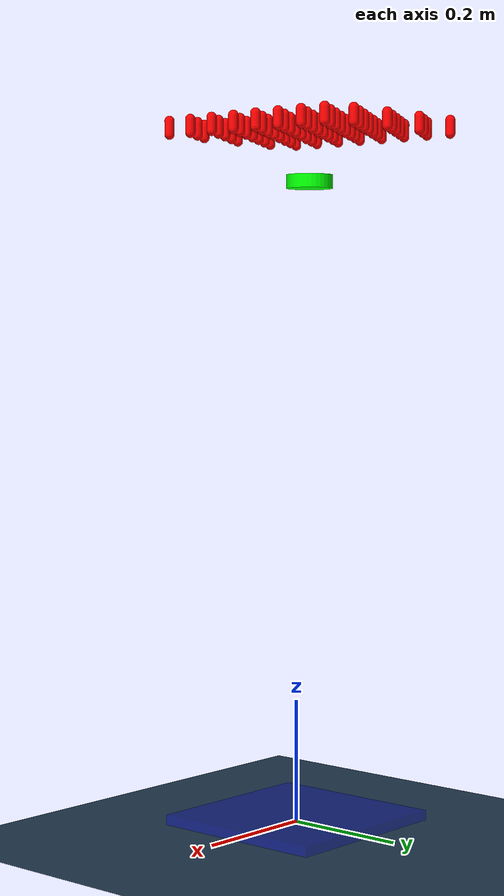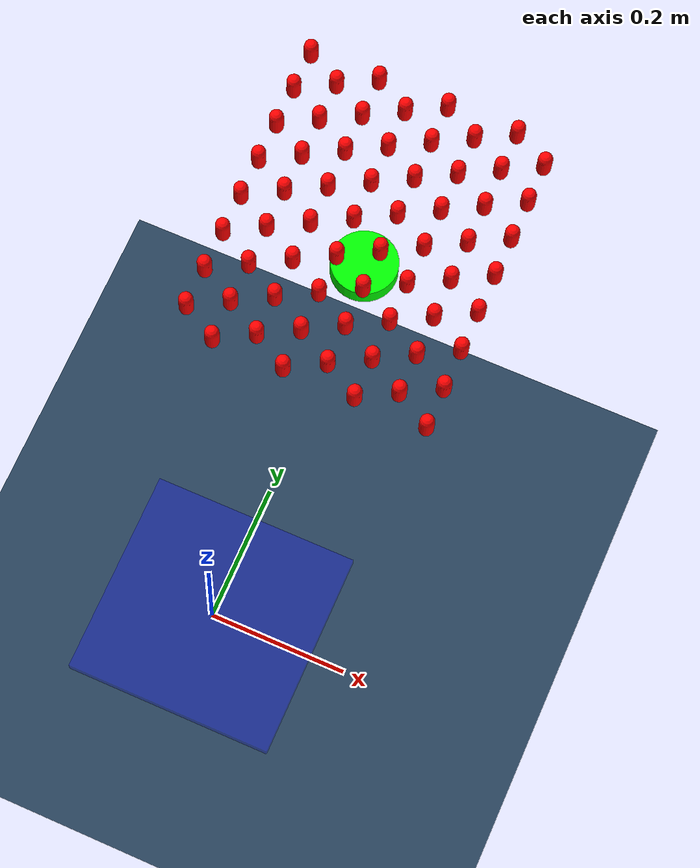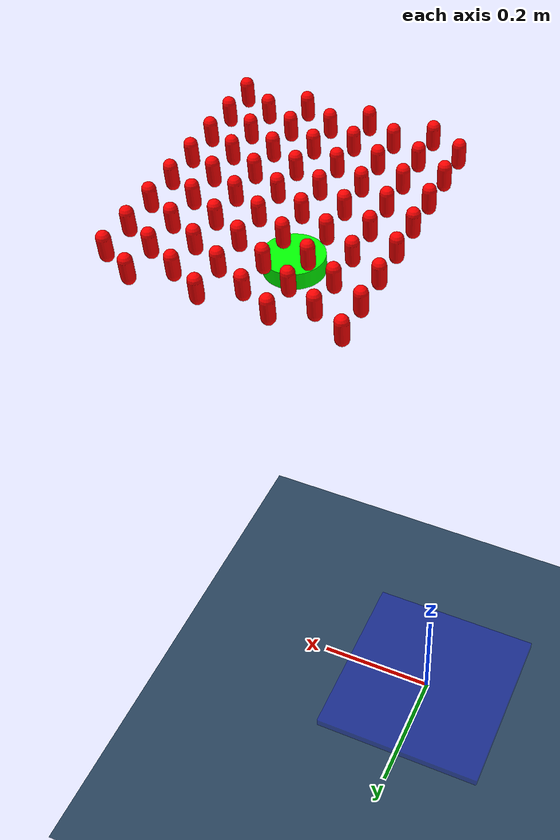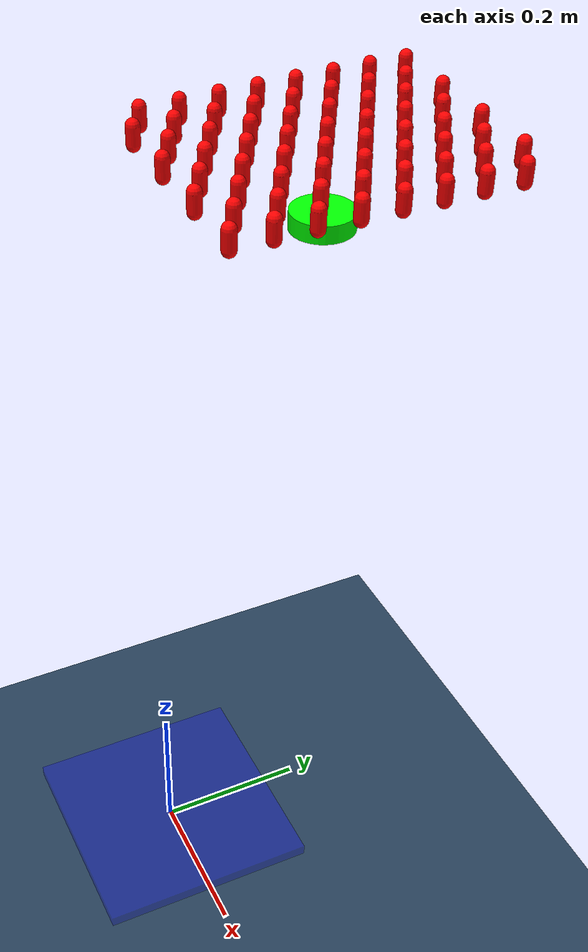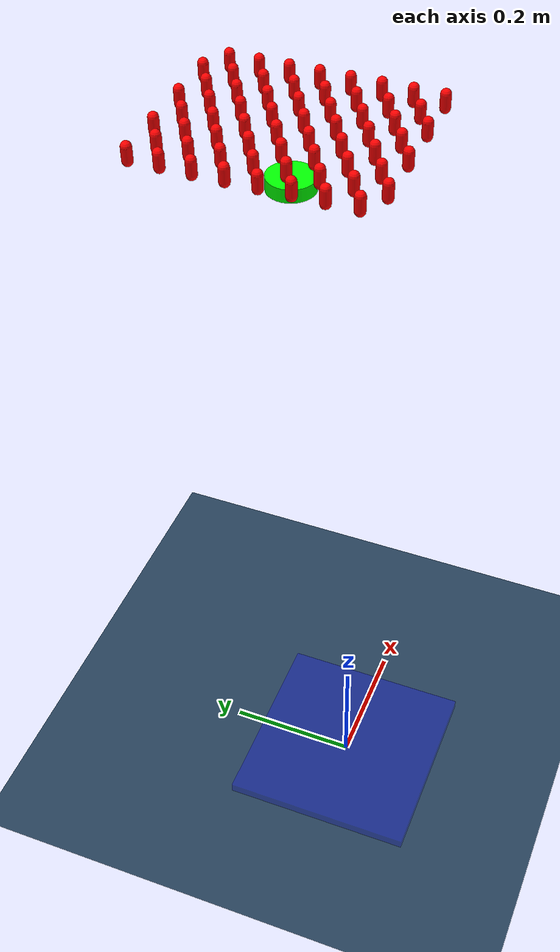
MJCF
<mujoco model="scene">
    <include file="delta_array.xml"/>

    <compiler autolimits="true" angle="degree"/>
    <option integrator="implicitfast" timestep="0.0005">
      <flag multiccd="enable" />
    </option>
    <visual>
      <headlight diffuse="0.6 0.6 0.6" ambient="0.3 0.3 0.3" specular="0 0 0"/>
      <rgba haze="0.15 0.25 0.35 1"/>
      <global fovy="58" azimuth="0" elevation="90"/>
    </visual>
    <statistic center="0.13125 0.1407285 1.5" extent="0.85"/>

    <asset>
      <texture type="skybox" builtin="gradient" rgb1="0.3 0.5 0.7" rgb2="0 0 0" width="512" height="3072"/>
      <texture type="2d" name="groundplane" builtin="checker" mark="edge" rgb1="0.2 0.3 0.4" rgb2="0.1 0.2 0.3"
        markrgb="0.8 0.8 0.8" width="300" height="300"/>
      <material name="groundplane" texture="groundplane" texuniform="true" texrepeat="5 5" reflectance="0.2"/>
      <material name="collision_material" rgba="0 0 0 0"/> <!-- transparent for collision -->
      <material name="visual_material" rgba="0 0 1 0.3"/> <!-- Blue semi-transparent for visual -->
    </asset>

    <worldbody>
      <light pos="0 0 1.5" dir="0 0 -1" directional="true"/>
      <geom name="floor" size="0 0 0.05" type="plane" material="groundplane"/>
    </worldbody>
  </mujoco>

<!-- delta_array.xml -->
<mujoco model="delta_array">
  <asset>
    <texture name="disc" file="assets/texture.png" type="2d" />
    <material name="disc" texture="disc" specular="0.5" shininess="0.5" />
    <mesh file="assets/disc.obj" scale="1 1 1" />
  </asset>
  <default>
    <geom type="capsule" size="0.0075 0.01" mass="0.4" condim="6" />
  </default>
  <visual>
    <global offwidth="1920" offheight="1080" />
  </visual>
  <worldbody>
    <body name="fingertip_0" pos="0.000000 0.000000 1.100000">
      <geom rgba="1 0 0 1" />
      <joint name="fingertip_0_x" type="slide" axis="1 0 0" limited="true" range="-0.03 0.03" />
      <joint name="fingertip_0_y" type="slide" axis="0 1 0" limited="true" range="-0.03 0.03" />
    </body>
    <body name="fingertip_1" pos="0.000000 0.043301 1.100000">
      <geom rgba="1 0 0 1" />
      <joint name="fingertip_1_x" type="slide" axis="1 0 0" limited="true" range="-0.03 0.03" />
      <joint name="fingertip_1_y" type="slide" axis="0 1 0" limited="true" range="-0.03 0.03" />
    </body>
    <body name="fingertip_2" pos="0.000000 0.086602 1.100000">
      <geom rgba="1 0 0 1" />
      <joint name="fingertip_2_x" type="slide" axis="1 0 0" limited="true" range="-0.03 0.03" />
      <joint name="fingertip_2_y" type="slide" axis="0 1 0" limited="true" range="-0.03 0.03" />
    </body>
    <body name="fingertip_3" pos="0.000000 0.129903 1.100000">
      <geom rgba="1 0 0 1" />
      <joint name="fingertip_3_x" type="slide" axis="1 0 0" limited="true" range="-0.03 0.03" />
      <joint name="fingertip_3_y" type="slide" axis="0 1 0" limited="true" range="-0.03 0.03" />
    </body>
    <body name="fingertip_4" pos="0.000000 0.173204 1.100000">
      <geom rgba="1 0 0 1" />
      <joint name="fingertip_4_x" type="slide" axis="1 0 0" limited="true" range="-0.03 0.03" />
      <joint name="fingertip_4_y" type="slide" axis="0 1 0" limited="true" range="-0.03 0.03" />
    </body>
    <body name="fingertip_5" pos="0.000000 0.216505 1.100000">
      <geom rgba="1 0 0 1" />
      <joint name="fingertip_5_x" type="slide" axis="1 0 0" limited="true" range="-0.03 0.03" />
      <joint name="fingertip_5_y" type="slide" axis="0 1 0" limited="true" range="-0.03 0.03" />
    </body>
    <body name="fingertip_6" pos="0.000000 0.259806 1.100000">
      <geom rgba="1 0 0 1" />
      <joint name="fingertip_6_x" type="slide" axis="1 0 0" limited="true" range="-0.03 0.03" />
      <joint name="fingertip_6_y" type="slide" axis="0 1 0" limited="true" range="-0.03 0.03" />
    </body>
    <body name="fingertip_7" pos="0.000000 0.303107 1.100000">
      <geom rgba="1 0 0 1" />
      <joint name="fingertip_7_x" type="slide" axis="1 0 0" limited="true" range="-0.03 0.03" />
      <joint name="fingertip_7_y" type="slide" axis="0 1 0" limited="true" range="-0.03 0.03" />
    </body>
    <body name="fingertip_8" pos="0.037500 -0.021650 1.100000">
      <geom rgba="1 0 0 1" />
      <joint name="fingertip_8_x" type="slide" axis="1 0 0" limited="true" range="-0.03 0.03" />
      <joint name="fingertip_8_y" type="slide" axis="0 1 0" limited="true" range="-0.03 0.03" />
    </body>
    <body name="fingertip_9" pos="0.037500 0.021651 1.100000">
      <geom rgba="1 0 0 1" />
      <joint name="fingertip_9_x" type="slide" axis="1 0 0" limited="true" range="-0.03 0.03" />
      <joint name="fingertip_9_y" type="slide" axis="0 1 0" limited="true" range="-0.03 0.03" />
    </body>
    <body name="fingertip_10" pos="0.037500 0.064952 1.100000">
      <geom rgba="1 0 0 1" />
      <joint name="fingertip_10_x" type="slide" axis="1 0 0" limited="true" range="-0.03 0.03" />
      <joint name="fingertip_10_y" type="slide" axis="0 1 0" limited="true" range="-0.03 0.03" />
    </body>
    <body name="fingertip_11" pos="0.037500 0.108253 1.100000">
      <geom rgba="1 0 0 1" />
      <joint name="fingertip_11_x" type="slide" axis="1 0 0" limited="true" range="-0.03 0.03" />
      <joint name="fingertip_11_y" type="slide" axis="0 1 0" limited="true" range="-0.03 0.03" />
    </body>
    <body name="fingertip_12" pos="0.037500 0.151554 1.100000">
      <geom rgba="1 0 0 1" />
      <joint name="fingertip_12_x" type="slide" axis="1 0 0" limited="true" range="-0.03 0.03" />
      <joint name="fingertip_12_y" type="slide" axis="0 1 0" limited="true" range="-0.03 0.03" />
    </body>
    <body name="fingertip_13" pos="0.037500 0.194855 1.100000">
      <geom rgba="1 0 0 1" />
      <joint name="fingertip_13_x" type="slide" axis="1 0 0" limited="true" range="-0.03 0.03" />
      <joint name="fingertip_13_y" type="slide" axis="0 1 0" limited="true" range="-0.03 0.03" />
    </body>
    <body name="fingertip_14" pos="0.037500 0.238156 1.100000">
      <geom rgba="1 0 0 1" />
      <joint name="fingertip_14_x" type="slide" axis="1 0 0" limited="true" range="-0.03 0.03" />
      <joint name="fingertip_14_y" type="slide" axis="0 1 0" limited="true" range="-0.03 0.03" />
    </body>
    <body name="fingertip_15" pos="0.037500 0.281457 1.100000">
      <geom rgba="1 0 0 1" />
      <joint name="fingertip_15_x" type="slide" axis="1 0 0" limited="true" range="-0.03 0.03" />
      <joint name="fingertip_15_y" type="slide" axis="0 1 0" limited="true" range="-0.03 0.03" />
    </body>
    <body name="fingertip_16" pos="0.075000 0.000000 1.100000">
      <geom rgba="1 0 0 1" />
      <joint name="fingertip_16_x" type="slide" axis="1 0 0" limited="true" range="-0.03 0.03" />
      <joint name="fingertip_16_y" type="slide" axis="0 1 0" limited="true" range="-0.03 0.03" />
    </body>
    <body name="fingertip_17" pos="0.075000 0.043301 1.100000">
      <geom rgba="1 0 0 1" />
      <joint name="fingertip_17_x" type="slide" axis="1 0 0" limited="true" range="-0.03 0.03" />
      <joint name="fingertip_17_y" type="slide" axis="0 1 0" limited="true" range="-0.03 0.03" />
    </body>
    <body name="fingertip_18" pos="0.075000 0.086602 1.100000">
      <geom rgba="1 0 0 1" />
      <joint name="fingertip_18_x" type="slide" axis="1 0 0" limited="true" range="-0.03 0.03" />
      <joint name="fingertip_18_y" type="slide" axis="0 1 0" limited="true" range="-0.03 0.03" />
    </body>
    <body name="fingertip_19" pos="0.075000 0.129903 1.100000">
      <geom rgba="1 0 0 1" />
      <joint name="fingertip_19_x" type="slide" axis="1 0 0" limited="true" range="-0.03 0.03" />
      <joint name="fingertip_19_y" type="slide" axis="0 1 0" limited="true" range="-0.03 0.03" />
    </body>
    <body name="fingertip_20" pos="0.075000 0.173204 1.100000">
      <geom rgba="1 0 0 1" />
      <joint name="fingertip_20_x" type="slide" axis="1 0 0" limited="true" range="-0.03 0.03" />
      <joint name="fingertip_20_y" type="slide" axis="0 1 0" limited="true" range="-0.03 0.03" />
    </body>
    <body name="fingertip_21" pos="0.075000 0.216505 1.100000">
      <geom rgba="1 0 0 1" />
      <joint name="fingertip_21_x" type="slide" axis="1 0 0" limited="true" range="-0.03 0.03" />
      <joint name="fingertip_21_y" type="slide" axis="0 1 0" limited="true" range="-0.03 0.03" />
    </body>
    <body name="fingertip_22" pos="0.075000 0.259806 1.100000">
      <geom rgba="1 0 0 1" />
      <joint name="fingertip_22_x" type="slide" axis="1 0 0" limited="true" range="-0.03 0.03" />
      <joint name="fingertip_22_y" type="slide" axis="0 1 0" limited="true" range="-0.03 0.03" />
    </body>
    <body name="fingertip_23" pos="0.075000 0.303107 1.100000">
      <geom rgba="1 0 0 1" />
      <joint name="fingertip_23_x" type="slide" axis="1 0 0" limited="true" range="-0.03 0.03" />
      <joint name="fingertip_23_y" type="slide" axis="0 1 0" limited="true" range="-0.03 0.03" />
    </body>
    <body name="fingertip_24" pos="0.112500 -0.021650 1.100000">
      <geom rgba="1 0 0 1" />
      <joint name="fingertip_24_x" type="slide" axis="1 0 0" limited="true" range="-0.03 0.03" />
      <joint name="fingertip_24_y" type="slide" axis="0 1 0" limited="true" range="-0.03 0.03" />
    </body>
    <body name="fingertip_25" pos="0.112500 0.021651 1.100000">
      <geom rgba="1 0 0 1" />
      <joint name="fingertip_25_x" type="slide" axis="1 0 0" limited="true" range="-0.03 0.03" />
      <joint name="fingertip_25_y" type="slide" axis="0 1 0" limited="true" range="-0.03 0.03" />
    </body>
    <body name="fingertip_26" pos="0.112500 0.064952 1.100000">
      <geom rgba="1 0 0 1" />
      <joint name="fingertip_26_x" type="slide" axis="1 0 0" limited="true" range="-0.03 0.03" />
      <joint name="fingertip_26_y" type="slide" axis="0 1 0" limited="true" range="-0.03 0.03" />
    </body>
    <body name="fingertip_27" pos="0.112500 0.108253 1.100000">
      <geom rgba="1 0 0 1" />
      <joint name="fingertip_27_x" type="slide" axis="1 0 0" limited="true" range="-0.03 0.03" />
      <joint name="fingertip_27_y" type="slide" axis="0 1 0" limited="true" range="-0.03 0.03" />
    </body>
    <body name="fingertip_28" pos="0.112500 0.151554 1.100000">
      <geom rgba="1 0 0 1" />
      <joint name="fingertip_28_x" type="slide" axis="1 0 0" limited="true" range="-0.03 0.03" />
      <joint name="fingertip_28_y" type="slide" axis="0 1 0" limited="true" range="-0.03 0.03" />
    </body>
    <body name="fingertip_29" pos="0.112500 0.194855 1.100000">
      <geom rgba="1 0 0 1" />
      <joint name="fingertip_29_x" type="slide" axis="1 0 0" limited="true" range="-0.03 0.03" />
      <joint name="fingertip_29_y" type="slide" axis="0 1 0" limited="true" range="-0.03 0.03" />
    </body>
    <body name="fingertip_30" pos="0.112500 0.238156 1.100000">
      <geom rgba="1 0 0 1" />
      <joint name="fingertip_30_x" type="slide" axis="1 0 0" limited="true" range="-0.03 0.03" />
      <joint name="fingertip_30_y" type="slide" axis="0 1 0" limited="true" range="-0.03 0.03" />
    </body>
    <body name="fingertip_31" pos="0.112500 0.281457 1.100000">
      <geom rgba="1 0 0 1" />
      <joint name="fingertip_31_x" type="slide" axis="1 0 0" limited="true" range="-0.03 0.03" />
      <joint name="fingertip_31_y" type="slide" axis="0 1 0" limited="true" range="-0.03 0.03" />
    </body>
    <body name="fingertip_32" pos="0.150000 0.000000 1.100000">
      <geom rgba="1 0 0 1" />
      <joint name="fingertip_32_x" type="slide" axis="1 0 0" limited="true" range="-0.03 0.03" />
      <joint name="fingertip_32_y" type="slide" axis="0 1 0" limited="true" range="-0.03 0.03" />
    </body>
    <body name="fingertip_33" pos="0.150000 0.043301 1.100000">
      <geom rgba="1 0 0 1" />
      <joint name="fingertip_33_x" type="slide" axis="1 0 0" limited="true" range="-0.03 0.03" />
      <joint name="fingertip_33_y" type="slide" axis="0 1 0" limited="true" range="-0.03 0.03" />
    </body>
    <body name="fingertip_34" pos="0.150000 0.086602 1.100000">
      <geom rgba="1 0 0 1" />
      <joint name="fingertip_34_x" type="slide" axis="1 0 0" limited="true" range="-0.03 0.03" />
      <joint name="fingertip_34_y" type="slide" axis="0 1 0" limited="true" range="-0.03 0.03" />
    </body>
    <body name="fingertip_35" pos="0.150000 0.129903 1.100000">
      <geom rgba="1 0 0 1" />
      <joint name="fingertip_35_x" type="slide" axis="1 0 0" limited="true" range="-0.03 0.03" />
      <joint name="fingertip_35_y" type="slide" axis="0 1 0" limited="true" range="-0.03 0.03" />
    </body>
    <body name="fingertip_36" pos="0.150000 0.173204 1.100000">
      <geom rgba="1 0 0 1" />
      <joint name="fingertip_36_x" type="slide" axis="1 0 0" limited="true" range="-0.03 0.03" />
      <joint name="fingertip_36_y" type="slide" axis="0 1 0" limited="true" range="-0.03 0.03" />
    </body>
    <body name="fingertip_37" pos="0.150000 0.216505 1.100000">
      <geom rgba="1 0 0 1" />
      <joint name="fingertip_37_x" type="slide" axis="1 0 0" limited="true" range="-0.03 0.03" />
      <joint name="fingertip_37_y" type="slide" axis="0 1 0" limited="true" range="-0.03 0.03" />
    </body>
    <body name="fingertip_38" pos="0.150000 0.259806 1.100000">
      <geom rgba="1 0 0 1" />
      <joint name="fingertip_38_x" type="slide" axis="1 0 0" limited="true" range="-0.03 0.03" />
      <joint name="fingertip_38_y" type="slide" axis="0 1 0" limited="true" range="-0.03 0.03" />
    </body>
    <body name="fingertip_39" pos="0.150000 0.303107 1.100000">
      <geom rgba="1 0 0 1" />
      <joint name="fingertip_39_x" type="slide" axis="1 0 0" limited="true" range="-0.03 0.03" />
      <joint name="fingertip_39_y" type="slide" axis="0 1 0" limited="true" range="-0.03 0.03" />
    </body>
    <body name="fingertip_40" pos="0.187500 -0.021650 1.100000">
      <geom rgba="1 0 0 1" />
      <joint name="fingertip_40_x" type="slide" axis="1 0 0" limited="true" range="-0.03 0.03" />
      <joint name="fingertip_40_y" type="slide" axis="0 1 0" limited="true" range="-0.03 0.03" />
    </body>
    <body name="fingertip_41" pos="0.187500 0.021651 1.100000">
      <geom rgba="1 0 0 1" />
      <joint name="fingertip_41_x" type="slide" axis="1 0 0" limited="true" range="-0.03 0.03" />
      <joint name="fingertip_41_y" type="slide" axis="0 1 0" limited="true" range="-0.03 0.03" />
    </body>
    <body name="fingertip_42" pos="0.187500 0.064952 1.100000">
      <geom rgba="1 0 0 1" />
      <joint name="fingertip_42_x" type="slide" axis="1 0 0" limited="true" range="-0.03 0.03" />
      <joint name="fingertip_42_y" type="slide" axis="0 1 0" limited="true" range="-0.03 0.03" />
    </body>
    <body name="fingertip_43" pos="0.187500 0.108253 1.100000">
      <geom rgba="1 0 0 1" />
      <joint name="fingertip_43_x" type="slide" axis="1 0 0" limited="true" range="-0.03 0.03" />
      <joint name="fingertip_43_y" type="slide" axis="0 1 0" limited="true" range="-0.03 0.03" />
    </body>
    <body name="fingertip_44" pos="0.187500 0.151554 1.100000">
      <geom rgba="1 0 0 1" />
      <joint name="fingertip_44_x" type="slide" axis="1 0 0" limited="true" range="-0.03 0.03" />
      <joint name="fingertip_44_y" type="slide" axis="0 1 0" limited="true" range="-0.03 0.03" />
    </body>
    <body name="fingertip_45" pos="0.187500 0.194855 1.100000">
      <geom rgba="1 0 0 1" />
      <joint name="fingertip_45_x" type="slide" axis="1 0 0" limited="true" range="-0.03 0.03" />
      <joint name="fingertip_45_y" type="slide" axis="0 1 0" limited="true" range="-0.03 0.03" />
    </body>
    <body name="fingertip_46" pos="0.187500 0.238156 1.100000">
      <geom rgba="1 0 0 1" />
      <joint name="fingertip_46_x" type="slide" axis="1 0 0" limited="true" range="-0.03 0.03" />
      <joint name="fingertip_46_y" type="slide" axis="0 1 0" limited="true" range="-0.03 0.03" />
    </body>
    <body name="fingertip_47" pos="0.187500 0.281457 1.100000">
      <geom rgba="1 0 0 1" />
      <joint name="fingertip_47_x" type="slide" axis="1 0 0" limited="true" range="-0.03 0.03" />
      <joint name="fingertip_47_y" type="slide" axis="0 1 0" limited="true" range="-0.03 0.03" />
    </body>
    <body name="fingertip_48" pos="0.225000 0.000000 1.100000">
      <geom rgba="1 0 0 1" />
      <joint name="fingertip_48_x" type="slide" axis="1 0 0" limited="true" range="-0.03 0.03" />
      <joint name="fingertip_48_y" type="slide" axis="0 1 0" limited="true" range="-0.03 0.03" />
    </body>
    <body name="fingertip_49" pos="0.225000 0.043301 1.100000">
      <geom rgba="1 0 0 1" />
      <joint name="fingertip_49_x" type="slide" axis="1 0 0" limited="true" range="-0.03 0.03" />
      <joint name="fingertip_49_y" type="slide" axis="0 1 0" limited="true" range="-0.03 0.03" />
    </body>
    <body name="fingertip_50" pos="0.225000 0.086602 1.100000">
      <geom rgba="1 0 0 1" />
      <joint name="fingertip_50_x" type="slide" axis="1 0 0" limited="true" range="-0.03 0.03" />
      <joint name="fingertip_50_y" type="slide" axis="0 1 0" limited="true" range="-0.03 0.03" />
    </body>
    <body name="fingertip_51" pos="0.225000 0.129903 1.100000">
      <geom rgba="1 0 0 1" />
      <joint name="fingertip_51_x" type="slide" axis="1 0 0" limited="true" range="-0.03 0.03" />
      <joint name="fingertip_51_y" type="slide" axis="0 1 0" limited="true" range="-0.03 0.03" />
    </body>
    <body name="fingertip_52" pos="0.225000 0.173204 1.100000">
      <geom rgba="1 0 0 1" />
      <joint name="fingertip_52_x" type="slide" axis="1 0 0" limited="true" range="-0.03 0.03" />
      <joint name="fingertip_52_y" type="slide" axis="0 1 0" limited="true" range="-0.03 0.03" />
    </body>
    <body name="fingertip_53" pos="0.225000 0.216505 1.100000">
      <geom rgba="1 0 0 1" />
      <joint name="fingertip_53_x" type="slide" axis="1 0 0" limited="true" range="-0.03 0.03" />
      <joint name="fingertip_53_y" type="slide" axis="0 1 0" limited="true" range="-0.03 0.03" />
    </body>
    <body name="fingertip_54" pos="0.225000 0.259806 1.100000">
      <geom rgba="1 0 0 1" />
      <joint name="fingertip_54_x" type="slide" axis="1 0 0" limited="true" range="-0.03 0.03" />
      <joint name="fingertip_54_y" type="slide" axis="0 1 0" limited="true" range="-0.03 0.03" />
    </body>
    <body name="fingertip_55" pos="0.225000 0.303107 1.100000">
      <geom rgba="1 0 0 1" />
      <joint name="fingertip_55_x" type="slide" axis="1 0 0" limited="true" range="-0.03 0.03" />
      <joint name="fingertip_55_y" type="slide" axis="0 1 0" limited="true" range="-0.03 0.03" />
    </body>
    <body name="fingertip_56" pos="0.262500 -0.021650 1.100000">
      <geom rgba="1 0 0 1" />
      <joint name="fingertip_56_x" type="slide" axis="1 0 0" limited="true" range="-0.03 0.03" />
      <joint name="fingertip_56_y" type="slide" axis="0 1 0" limited="true" range="-0.03 0.03" />
    </body>
    <body name="fingertip_57" pos="0.262500 0.021651 1.100000">
      <geom rgba="1 0 0 1" />
      <joint name="fingertip_57_x" type="slide" axis="1 0 0" limited="true" range="-0.03 0.03" />
      <joint name="fingertip_57_y" type="slide" axis="0 1 0" limited="true" range="-0.03 0.03" />
    </body>
    <body name="fingertip_58" pos="0.262500 0.064952 1.100000">
      <geom rgba="1 0 0 1" />
      <joint name="fingertip_58_x" type="slide" axis="1 0 0" limited="true" range="-0.03 0.03" />
      <joint name="fingertip_58_y" type="slide" axis="0 1 0" limited="true" range="-0.03 0.03" />
    </body>
    <body name="fingertip_59" pos="0.262500 0.108253 1.100000">
      <geom rgba="1 0 0 1" />
      <joint name="fingertip_59_x" type="slide" axis="1 0 0" limited="true" range="-0.03 0.03" />
      <joint name="fingertip_59_y" type="slide" axis="0 1 0" limited="true" range="-0.03 0.03" />
    </body>
    <body name="fingertip_60" pos="0.262500 0.151554 1.100000">
      <geom rgba="1 0 0 1" />
      <joint name="fingertip_60_x" type="slide" axis="1 0 0" limited="true" range="-0.03 0.03" />
      <joint name="fingertip_60_y" type="slide" axis="0 1 0" limited="true" range="-0.03 0.03" />
    </body>
    <body name="fingertip_61" pos="0.262500 0.194855 1.100000">
      <geom rgba="1 0 0 1" />
      <joint name="fingertip_61_x" type="slide" axis="1 0 0" limited="true" range="-0.03 0.03" />
      <joint name="fingertip_61_y" type="slide" axis="0 1 0" limited="true" range="-0.03 0.03" />
    </body>
    <body name="fingertip_62" pos="0.262500 0.238156 1.100000">
      <geom rgba="1 0 0 1" />
      <joint name="fingertip_62_x" type="slide" axis="1 0 0" limited="true" range="-0.03 0.03" />
      <joint name="fingertip_62_y" type="slide" axis="0 1 0" limited="true" range="-0.03 0.03" />
    </body>
    <body name="fingertip_63" pos="0.262500 0.281457 1.100000">
      <geom rgba="1 0 0 1" />
      <joint name="fingertip_63_x" type="slide" axis="1 0 0" limited="true" range="-0.03 0.03" />
      <joint name="fingertip_63_y" type="slide" axis="0 1 0" limited="true" range="-0.03 0.03" />
    </body>
    <body name="transparent_table" pos="0 0 0">
      <geom name="collision_geom" type="box" size="1 1 1" contype="1" conaffinity="1" condim="4" material="collision_material" />
      <geom name="visual_geom" type="box" size="0.15 0.15 0.015" contype="0" conaffinity="0" material="visual_material" />
    </body>
    <body name="disc" pos="0.13125 0.1407285 1.0201">
      <freejoint />
      <geom pos="0 0 0" name="object" type="mesh" mesh="disc" material="disc" euler="90 0 0" mass="0.01" condim="4" rgba="0 1 0 1" />
    </body>
  </worldbody>
  <actuator>
    <position joint="fingertip_0_x" ctrllimited="true" ctrlrange="-0.03 0.03" kp="20" kv="10" />
    <position joint="fingertip_0_y" ctrllimited="true" ctrlrange="-0.03 0.03" kp="20" kv="10" />
    <position joint="fingertip_1_x" ctrllimited="true" ctrlrange="-0.03 0.03" kp="20" kv="10" />
    <position joint="fingertip_1_y" ctrllimited="true" ctrlrange="-0.03 0.03" kp="20" kv="10" />
    <position joint="fingertip_2_x" ctrllimited="true" ctrlrange="-0.03 0.03" kp="20" kv="10" />
    <position joint="fingertip_2_y" ctrllimited="true" ctrlrange="-0.03 0.03" kp="20" kv="10" />
    <position joint="fingertip_3_x" ctrllimited="true" ctrlrange="-0.03 0.03" kp="20" kv="10" />
    <position joint="fingertip_3_y" ctrllimited="true" ctrlrange="-0.03 0.03" kp="20" kv="10" />
    <position joint="fingertip_4_x" ctrllimited="true" ctrlrange="-0.03 0.03" kp="20" kv="10" />
    <position joint="fingertip_4_y" ctrllimited="true" ctrlrange="-0.03 0.03" kp="20" kv="10" />
    <position joint="fingertip_5_x" ctrllimited="true" ctrlrange="-0.03 0.03" kp="20" kv="10" />
    <position joint="fingertip_5_y" ctrllimited="true" ctrlrange="-0.03 0.03" kp="20" kv="10" />
    <position joint="fingertip_6_x" ctrllimited="true" ctrlrange="-0.03 0.03" kp="20" kv="10" />
    <position joint="fingertip_6_y" ctrllimited="true" ctrlrange="-0.03 0.03" kp="20" kv="10" />
    <position joint="fingertip_7_x" ctrllimited="true" ctrlrange="-0.03 0.03" kp="20" kv="10" />
    <position joint="fingertip_7_y" ctrllimited="true" ctrlrange="-0.03 0.03" kp="20" kv="10" />
    <position joint="fingertip_8_x" ctrllimited="true" ctrlrange="-0.03 0.03" kp="20" kv="10" />
    <position joint="fingertip_8_y" ctrllimited="true" ctrlrange="-0.03 0.03" kp="20" kv="10" />
    <position joint="fingertip_9_x" ctrllimited="true" ctrlrange="-0.03 0.03" kp="20" kv="10" />
    <position joint="fingertip_9_y" ctrllimited="true" ctrlrange="-0.03 0.03" kp="20" kv="10" />
    <position joint="fingertip_10_x" ctrllimited="true" ctrlrange="-0.03 0.03" kp="20" kv="10" />
    <position joint="fingertip_10_y" ctrllimited="true" ctrlrange="-0.03 0.03" kp="20" kv="10" />
    <position joint="fingertip_11_x" ctrllimited="true" ctrlrange="-0.03 0.03" kp="20" kv="10" />
    <position joint="fingertip_11_y" ctrllimited="true" ctrlrange="-0.03 0.03" kp="20" kv="10" />
    <position joint="fingertip_12_x" ctrllimited="true" ctrlrange="-0.03 0.03" kp="20" kv="10" />
    <position joint="fingertip_12_y" ctrllimited="true" ctrlrange="-0.03 0.03" kp="20" kv="10" />
    <position joint="fingertip_13_x" ctrllimited="true" ctrlrange="-0.03 0.03" kp="20" kv="10" />
    <position joint="fingertip_13_y" ctrllimited="true" ctrlrange="-0.03 0.03" kp="20" kv="10" />
    <position joint="fingertip_14_x" ctrllimited="true" ctrlrange="-0.03 0.03" kp="20" kv="10" />
    <position joint="fingertip_14_y" ctrllimited="true" ctrlrange="-0.03 0.03" kp="20" kv="10" />
    <position joint="fingertip_15_x" ctrllimited="true" ctrlrange="-0.03 0.03" kp="20" kv="10" />
    <position joint="fingertip_15_y" ctrllimited="true" ctrlrange="-0.03 0.03" kp="20" kv="10" />
    <position joint="fingertip_16_x" ctrllimited="true" ctrlrange="-0.03 0.03" kp="20" kv="10" />
    <position joint="fingertip_16_y" ctrllimited="true" ctrlrange="-0.03 0.03" kp="20" kv="10" />
    <position joint="fingertip_17_x" ctrllimited="true" ctrlrange="-0.03 0.03" kp="20" kv="10" />
    <position joint="fingertip_17_y" ctrllimited="true" ctrlrange="-0.03 0.03" kp="20" kv="10" />
    <position joint="fingertip_18_x" ctrllimited="true" ctrlrange="-0.03 0.03" kp="20" kv="10" />
    <position joint="fingertip_18_y" ctrllimited="true" ctrlrange="-0.03 0.03" kp="20" kv="10" />
    <position joint="fingertip_19_x" ctrllimited="true" ctrlrange="-0.03 0.03" kp="20" kv="10" />
    <position joint="fingertip_19_y" ctrllimited="true" ctrlrange="-0.03 0.03" kp="20" kv="10" />
    <position joint="fingertip_20_x" ctrllimited="true" ctrlrange="-0.03 0.03" kp="20" kv="10" />
    <position joint="fingertip_20_y" ctrllimited="true" ctrlrange="-0.03 0.03" kp="20" kv="10" />
    <position joint="fingertip_21_x" ctrllimited="true" ctrlrange="-0.03 0.03" kp="20" kv="10" />
    <position joint="fingertip_21_y" ctrllimited="true" ctrlrange="-0.03 0.03" kp="20" kv="10" />
    <position joint="fingertip_22_x" ctrllimited="true" ctrlrange="-0.03 0.03" kp="20" kv="10" />
    <position joint="fingertip_22_y" ctrllimited="true" ctrlrange="-0.03 0.03" kp="20" kv="10" />
    <position joint="fingertip_23_x" ctrllimited="true" ctrlrange="-0.03 0.03" kp="20" kv="10" />
    <position joint="fingertip_23_y" ctrllimited="true" ctrlrange="-0.03 0.03" kp="20" kv="10" />
    <position joint="fingertip_24_x" ctrllimited="true" ctrlrange="-0.03 0.03" kp="20" kv="10" />
    <position joint="fingertip_24_y" ctrllimited="true" ctrlrange="-0.03 0.03" kp="20" kv="10" />
    <position joint="fingertip_25_x" ctrllimited="true" ctrlrange="-0.03 0.03" kp="20" kv="10" />
    <position joint="fingertip_25_y" ctrllimited="true" ctrlrange="-0.03 0.03" kp="20" kv="10" />
    <position joint="fingertip_26_x" ctrllimited="true" ctrlrange="-0.03 0.03" kp="20" kv="10" />
    <position joint="fingertip_26_y" ctrllimited="true" ctrlrange="-0.03 0.03" kp="20" kv="10" />
    <position joint="fingertip_27_x" ctrllimited="true" ctrlrange="-0.03 0.03" kp="20" kv="10" />
    <position joint="fingertip_27_y" ctrllimited="true" ctrlrange="-0.03 0.03" kp="20" kv="10" />
    <position joint="fingertip_28_x" ctrllimited="true" ctrlrange="-0.03 0.03" kp="20" kv="10" />
    <position joint="fingertip_28_y" ctrllimited="true" ctrlrange="-0.03 0.03" kp="20" kv="10" />
    <position joint="fingertip_29_x" ctrllimited="true" ctrlrange="-0.03 0.03" kp="20" kv="10" />
    <position joint="fingertip_29_y" ctrllimited="true" ctrlrange="-0.03 0.03" kp="20" kv="10" />
    <position joint="fingertip_30_x" ctrllimited="true" ctrlrange="-0.03 0.03" kp="20" kv="10" />
    <position joint="fingertip_30_y" ctrllimited="true" ctrlrange="-0.03 0.03" kp="20" kv="10" />
    <position joint="fingertip_31_x" ctrllimited="true" ctrlrange="-0.03 0.03" kp="20" kv="10" />
    <position joint="fingertip_31_y" ctrllimited="true" ctrlrange="-0.03 0.03" kp="20" kv="10" />
    <position joint="fingertip_32_x" ctrllimited="true" ctrlrange="-0.03 0.03" kp="20" kv="10" />
    <position joint="fingertip_32_y" ctrllimited="true" ctrlrange="-0.03 0.03" kp="20" kv="10" />
    <position joint="fingertip_33_x" ctrllimited="true" ctrlrange="-0.03 0.03" kp="20" kv="10" />
    <position joint="fingertip_33_y" ctrllimited="true" ctrlrange="-0.03 0.03" kp="20" kv="10" />
    <position joint="fingertip_34_x" ctrllimited="true" ctrlrange="-0.03 0.03" kp="20" kv="10" />
    <position joint="fingertip_34_y" ctrllimited="true" ctrlrange="-0.03 0.03" kp="20" kv="10" />
    <position joint="fingertip_35_x" ctrllimited="true" ctrlrange="-0.03 0.03" kp="20" kv="10" />
    <position joint="fingertip_35_y" ctrllimited="true" ctrlrange="-0.03 0.03" kp="20" kv="10" />
    <position joint="fingertip_36_x" ctrllimited="true" ctrlrange="-0.03 0.03" kp="20" kv="10" />
    <position joint="fingertip_36_y" ctrllimited="true" ctrlrange="-0.03 0.03" kp="20" kv="10" />
    <position joint="fingertip_37_x" ctrllimited="true" ctrlrange="-0.03 0.03" kp="20" kv="10" />
    <position joint="fingertip_37_y" ctrllimited="true" ctrlrange="-0.03 0.03" kp="20" kv="10" />
    <position joint="fingertip_38_x" ctrllimited="true" ctrlrange="-0.03 0.03" kp="20" kv="10" />
    <position joint="fingertip_38_y" ctrllimited="true" ctrlrange="-0.03 0.03" kp="20" kv="10" />
    <position joint="fingertip_39_x" ctrllimited="true" ctrlrange="-0.03 0.03" kp="20" kv="10" />
    <position joint="fingertip_39_y" ctrllimited="true" ctrlrange="-0.03 0.03" kp="20" kv="10" />
    <position joint="fingertip_40_x" ctrllimited="true" ctrlrange="-0.03 0.03" kp="20" kv="10" />
    <position joint="fingertip_40_y" ctrllimited="true" ctrlrange="-0.03 0.03" kp="20" kv="10" />
    <position joint="fingertip_41_x" ctrllimited="true" ctrlrange="-0.03 0.03" kp="20" kv="10" />
    <position joint="fingertip_41_y" ctrllimited="true" ctrlrange="-0.03 0.03" kp="20" kv="10" />
    <position joint="fingertip_42_x" ctrllimited="true" ctrlrange="-0.03 0.03" kp="20" kv="10" />
    <position joint="fingertip_42_y" ctrllimited="true" ctrlrange="-0.03 0.03" kp="20" kv="10" />
    <position joint="fingertip_43_x" ctrllimited="true" ctrlrange="-0.03 0.03" kp="20" kv="10" />
    <position joint="fingertip_43_y" ctrllimited="true" ctrlrange="-0.03 0.03" kp="20" kv="10" />
    <position joint="fingertip_44_x" ctrllimited="true" ctrlrange="-0.03 0.03" kp="20" kv="10" />
    <position joint="fingertip_44_y" ctrllimited="true" ctrlrange="-0.03 0.03" kp="20" kv="10" />
    <position joint="fingertip_45_x" ctrllimited="true" ctrlrange="-0.03 0.03" kp="20" kv="10" />
    <position joint="fingertip_45_y" ctrllimited="true" ctrlrange="-0.03 0.03" kp="20" kv="10" />
    <position joint="fingertip_46_x" ctrllimited="true" ctrlrange="-0.03 0.03" kp="20" kv="10" />
    <position joint="fingertip_46_y" ctrllimited="true" ctrlrange="-0.03 0.03" kp="20" kv="10" />
    <position joint="fingertip_47_x" ctrllimited="true" ctrlrange="-0.03 0.03" kp="20" kv="10" />
    <position joint="fingertip_47_y" ctrllimited="true" ctrlrange="-0.03 0.03" kp="20" kv="10" />
    <position joint="fingertip_48_x" ctrllimited="true" ctrlrange="-0.03 0.03" kp="20" kv="10" />
    <position joint="fingertip_48_y" ctrllimited="true" ctrlrange="-0.03 0.03" kp="20" kv="10" />
    <position joint="fingertip_49_x" ctrllimited="true" ctrlrange="-0.03 0.03" kp="20" kv="10" />
    <position joint="fingertip_49_y" ctrllimited="true" ctrlrange="-0.03 0.03" kp="20" kv="10" />
    <position joint="fingertip_50_x" ctrllimited="true" ctrlrange="-0.03 0.03" kp="20" kv="10" />
    <position joint="fingertip_50_y" ctrllimited="true" ctrlrange="-0.03 0.03" kp="20" kv="10" />
    <position joint="fingertip_51_x" ctrllimited="true" ctrlrange="-0.03 0.03" kp="20" kv="10" />
    <position joint="fingertip_51_y" ctrllimited="true" ctrlrange="-0.03 0.03" kp="20" kv="10" />
    <position joint="fingertip_52_x" ctrllimited="true" ctrlrange="-0.03 0.03" kp="20" kv="10" />
    <position joint="fingertip_52_y" ctrllimited="true" ctrlrange="-0.03 0.03" kp="20" kv="10" />
    <position joint="fingertip_53_x" ctrllimited="true" ctrlrange="-0.03 0.03" kp="20" kv="10" />
    <position joint="fingertip_53_y" ctrllimited="true" ctrlrange="-0.03 0.03" kp="20" kv="10" />
    <position joint="fingertip_54_x" ctrllimited="true" ctrlrange="-0.03 0.03" kp="20" kv="10" />
    <position joint="fingertip_54_y" ctrllimited="true" ctrlrange="-0.03 0.03" kp="20" kv="10" />
    <position joint="fingertip_55_x" ctrllimited="true" ctrlrange="-0.03 0.03" kp="20" kv="10" />
    <position joint="fingertip_55_y" ctrllimited="true" ctrlrange="-0.03 0.03" kp="20" kv="10" />
    <position joint="fingertip_56_x" ctrllimited="true" ctrlrange="-0.03 0.03" kp="20" kv="10" />
    <position joint="fingertip_56_y" ctrllimited="true" ctrlrange="-0.03 0.03" kp="20" kv="10" />
    <position joint="fingertip_57_x" ctrllimited="true" ctrlrange="-0.03 0.03" kp="20" kv="10" />
    <position joint="fingertip_57_y" ctrllimited="true" ctrlrange="-0.03 0.03" kp="20" kv="10" />
    <position joint="fingertip_58_x" ctrllimited="true" ctrlrange="-0.03 0.03" kp="20" kv="10" />
    <position joint="fingertip_58_y" ctrllimited="true" ctrlrange="-0.03 0.03" kp="20" kv="10" />
    <position joint="fingertip_59_x" ctrllimited="true" ctrlrange="-0.03 0.03" kp="20" kv="10" />
    <position joint="fingertip_59_y" ctrllimited="true" ctrlrange="-0.03 0.03" kp="20" kv="10" />
    <position joint="fingertip_60_x" ctrllimited="true" ctrlrange="-0.03 0.03" kp="20" kv="10" />
    <position joint="fingertip_60_y" ctrllimited="true" ctrlrange="-0.03 0.03" kp="20" kv="10" />
    <position joint="fingertip_61_x" ctrllimited="true" ctrlrange="-0.03 0.03" kp="20" kv="10" />
    <position joint="fingertip_61_y" ctrllimited="true" ctrlrange="-0.03 0.03" kp="20" kv="10" />
    <position joint="fingertip_62_x" ctrllimited="true" ctrlrange="-0.03 0.03" kp="20" kv="10" />
    <position joint="fingertip_62_y" ctrllimited="true" ctrlrange="-0.03 0.03" kp="20" kv="10" />
    <position joint="fingertip_63_x" ctrllimited="true" ctrlrange="-0.03 0.03" kp="20" kv="10" />
    <position joint="fingertip_63_y" ctrllimited="true" ctrlrange="-0.03 0.03" kp="20" kv="10" />
  </actuator>
</mujoco>
